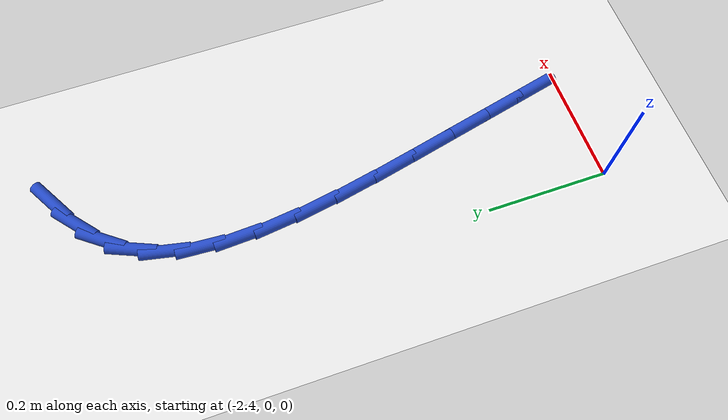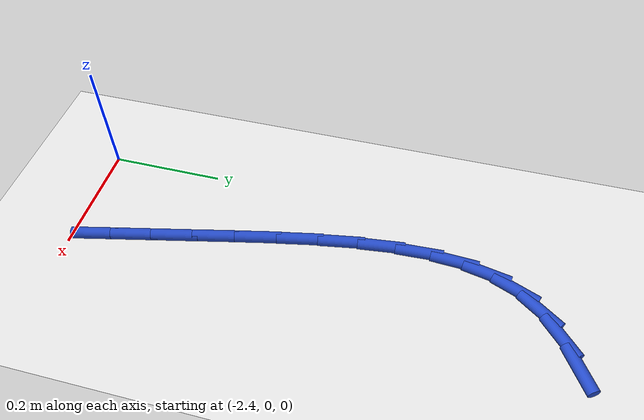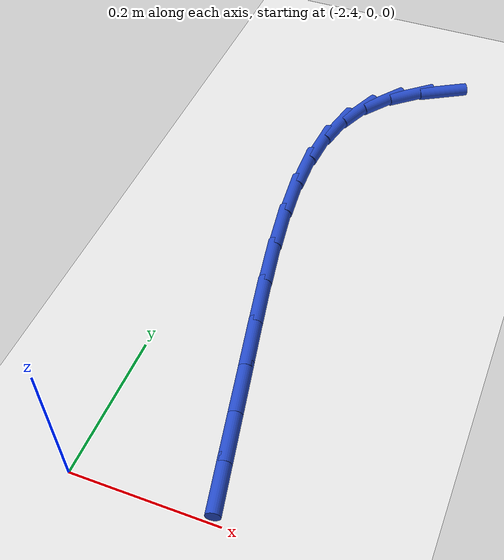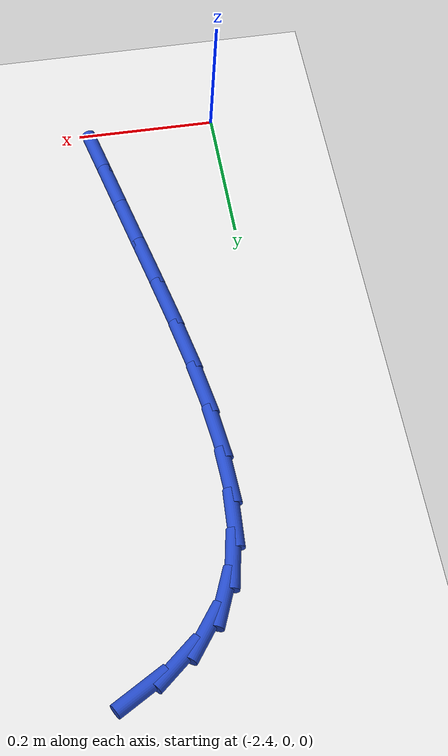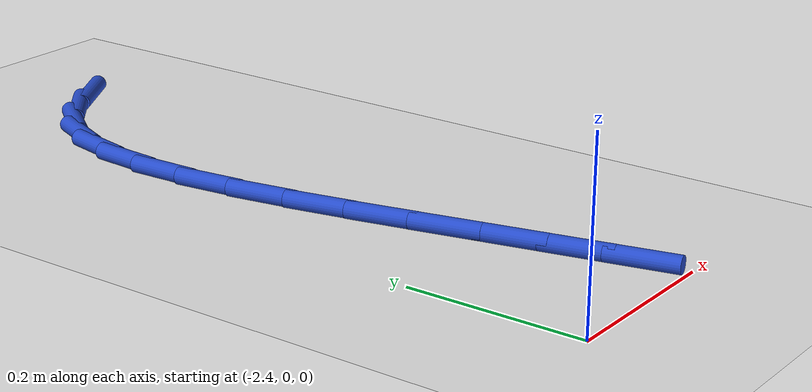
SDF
<sdf version="1.6">
 <world name="default">
  <model name="ground_plane">
   <static>1</static>
   <link name="link">
    <collision name="collision">
     <geometry><plane><normal>0 0 1</normal><size>100 100</size></plane></geometry>
     <surface><friction><ode><mu>100</mu><mu2>50</mu2></ode></friction></surface>
    </collision>
    <visual name="visual">
     <cast_shadows>0</cast_shadows>
     <geometry><plane><normal>0 0 1</normal><size>100 100</size></plane></geometry>
     <material>
      <script><uri>file://media/materials/scripts/gazebo.material</uri><name>Gazebo/WhiteGlow</name></script>
     </material>
    </visual>
   </link>
  </model>
  <model name="line">
   <link name="link_46">
    <pose>-2.1676816007539466 0.8458525925335969 0.01 0 1.57 0.5183726502129323</pose>
    <collision name="collision">
     <geometry><cylinder><radius>0.01</radius><length>0.08</length></cylinder></geometry>
    </collision>
    <visual name="visual">
     <material>
      <script><name>Gazebo/Blue</name><uri>file://media/materials/scripts/gazebo.material</uri></script>
     </material>
     <geometry><cylinder><radius>0.01</radius><length>0.08</length></cylinder></geometry>
    </visual>
   </link>
   <link name="link_47">
    <pose>-2.2150815259461263 0.81881553296689 0.01 0 1.57 0.6934110599310295</pose>
    <collision name="collision">
     <geometry><cylinder><radius>0.01</radius><length>0.08</length></cylinder></geometry>
    </collision>
    <visual name="visual">
     <material>
      <script><name>Gazebo/Blue</name><uri>file://media/materials/scripts/gazebo.material</uri></script>
     </material>
     <geometry><cylinder><radius>0.01</radius><length>0.08</length></cylinder></geometry>
    </visual>
   </link>
   <link name="link_48">
    <pose>-2.254431415966529 0.7861123539751261 0.01 0 1.57 0.9254138585863319</pose>
    <collision name="collision">
     <geometry><cylinder><radius>0.01</radius><length>0.08</length></cylinder></geometry>
    </collision>
    <visual name="visual">
     <material>
      <script><name>Gazebo/Blue</name><uri>file://media/materials/scripts/gazebo.material</uri></script>
     </material>
     <geometry><cylinder><radius>0.01</radius><length>0.08</length></cylinder></geometry>
    </visual>
   </link>
   <link name="link_49">
    <pose>-2.2843435608728186 0.7463854239579334 0.01 0 1.57 1.1710497855664619</pose>
    <collision name="collision">
     <geometry><cylinder><radius>0.01</radius><length>0.08</length></cylinder></geometry>
    </collision>
    <visual name="visual">
     <material>
      <script><name>Gazebo/Blue</name><uri>file://media/materials/scripts/gazebo.material</uri></script>
     </material>
     <geometry><cylinder><radius>0.01</radius><length>0.08</length></cylinder></geometry>
    </visual>
   </link>
   <link name="link_50">
    <pose>-2.3043187717504434 0.6991062012024583 0.01 0 1.57 1.3670764596442424</pose>
    <collision name="collision">
     <geometry><cylinder><radius>0.01</radius><length>0.08</length></cylinder></geometry>
    </collision>
    <visual name="visual">
     <material>
      <script><name>Gazebo/Blue</name><uri>file://media/materials/scripts/gazebo.material</uri></script>
     </material>
     <geometry><cylinder><radius>0.01</radius><length>0.08</length></cylinder></geometry>
    </visual>
   </link>
   <link name="link_51">
    <pose>-2.3154487043790417 0.6452305807253427 0.01 0 1.57 1.5112061010353304</pose>
    <collision name="collision">
     <geometry><cylinder><radius>0.01</radius><length>0.08</length></cylinder></geometry>
    </collision>
    <visual name="visual">
     <material>
      <script><name>Gazebo/Blue</name><uri>file://media/materials/scripts/gazebo.material</uri></script>
     </material>
     <geometry><cylinder><radius>0.01</radius><length>0.08</length></cylinder></geometry>
    </visual>
   </link>
   <link name="link_52">
    <pose>-2.318990286776674 0.5858686750994562 0.01 0 1.57 -1.5270538685248705</pose>
    <collision name="collision">
     <geometry><cylinder><radius>0.01</radius><length>0.08</length></cylinder></geometry>
    </collision>
    <visual name="visual">
     <material>
      <script><name>Gazebo/Blue</name><uri>file://media/materials/scripts/gazebo.material</uri></script>
     </material>
     <geometry><cylinder><radius>0.01</radius><length>0.08</length></cylinder></geometry>
    </visual>
   </link>
   <link name="link_53">
    <pose>-2.3162004469613997 0.5221305968976689 0.01 0 1.57 -1.453960009052992</pose>
    <collision name="collision">
     <geometry><cylinder><radius>0.01</radius><length>0.08</length></cylinder></geometry>
    </collision>
    <visual name="visual">
     <material>
      <script><name>Gazebo/Blue</name><uri>file://media/materials/scripts/gazebo.material</uri></script>
     </material>
     <geometry><cylinder><radius>0.01</radius><length>0.08</length></cylinder></geometry>
    </visual>
   </link>
   <link name="link_54">
    <pose>-2.308336112951279 0.45512645869285057 0.01 0 1.57 -1.403464758095481</pose>
    <collision name="collision">
     <geometry><cylinder><radius>0.01</radius><length>0.08</length></cylinder></geometry>
    </collision>
    <visual name="visual">
     <material>
      <script><name>Gazebo/Blue</name><uri>file://media/materials/scripts/gazebo.material</uri></script>
     </material>
     <geometry><cylinder><radius>0.01</radius><length>0.08</length></cylinder></geometry>
    </visual>
   </link>
   <link name="link_55">
    <pose>-2.2966542127643694 0.3859663730578713 0.01 0 1.57 -1.3706445515810521</pose>
    <collision name="collision">
     <geometry><cylinder><radius>0.01</radius><length>0.08</length></cylinder></geometry>
    </collision>
    <visual name="visual">
     <material>
      <script><name>Gazebo/Blue</name><uri>file://media/materials/scripts/gazebo.material</uri></script>
     </material>
     <geometry><cylinder><radius>0.01</radius><length>0.08</length></cylinder></geometry>
    </visual>
   </link>
   <link name="link_56">
    <pose>-2.2824116744187335 0.3157604525656005 0.01 0 1.57 -1.352681528369168</pose>
    <collision name="collision">
     <geometry><cylinder><radius>0.01</radius><length>0.08</length></cylinder></geometry>
    </collision>
    <visual name="visual">
     <material>
      <script><name>Gazebo/Blue</name><uri>file://media/materials/scripts/gazebo.material</uri></script>
     </material>
     <geometry><cylinder><radius>0.01</radius><length>0.08</length></cylinder></geometry>
    </visual>
   </link>
   <link name="link_57">
    <pose>-2.26686542593243 0.24561880978890893 0.01 0 1.57 -1.348107232281761</pose>
    <collision name="collision">
     <geometry><cylinder><radius>0.01</radius><length>0.08</length></cylinder></geometry>
    </collision>
    <visual name="visual">
     <material>
      <script><name>Gazebo/Blue</name><uri>file://media/materials/scripts/gazebo.material</uri></script>
     </material>
     <geometry><cylinder><radius>0.01</radius><length>0.08</length></cylinder></geometry>
    </visual>
   </link>
   <link name="link_58">
    <pose>-2.2512422624311443 0.17662552323667358 0.01 0 1.57 -1.3494873339171074</pose>
    <collision name="collision">
     <geometry><cylinder><radius>0.01</radius><length>0.08</length></cylinder></geometry>
    </collision>
    <visual name="visual">
     <material>
      <script><name>Gazebo/Blue</name><uri>file://media/materials/scripts/gazebo.material</uri></script>
     </material>
     <geometry><cylinder><radius>0.01</radius><length>0.08</length></cylinder></geometry>
    </visual>
   </link>
   <link name="link_59">
    <pose>-2.2360893379699704 0.10927747856205278 0.01 0 1.57 -1.3493981883180683</pose>
    <collision name="collision">
     <geometry><cylinder><radius>0.01</radius><length>0.08</length></cylinder></geometry>
    </collision>
    <visual name="visual">
     <material>
      <script><name>Gazebo/Blue</name><uri>file://media/materials/scripts/gazebo.material</uri></script>
     </material>
     <geometry><cylinder><radius>0.01</radius><length>0.08</length></cylinder></geometry>
    </visual>
   </link>
   <link name="link_60">
    <pose>-2.2212815360577505 0.04349073651084206 0.01 0 1.57 -1.3473927518544229</pose>
    <collision name="collision">
     <geometry><cylinder><radius>0.01</radius><length>0.08</length></cylinder></geometry>
    </collision>
    <visual name="visual">
     <material>
      <script><name>Gazebo/Blue</name><uri>file://media/materials/scripts/gazebo.material</uri></script>
     </material>
     <geometry><cylinder><radius>0.01</radius><length>0.08</length></cylinder></geometry>
    </visual>
   </link>
  </model>
 </world>
</sdf>
